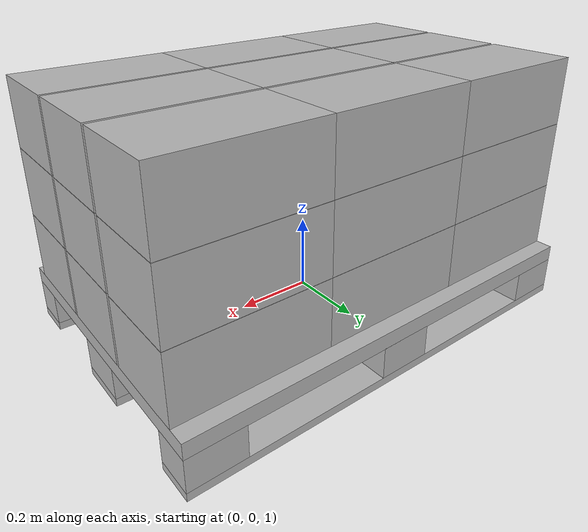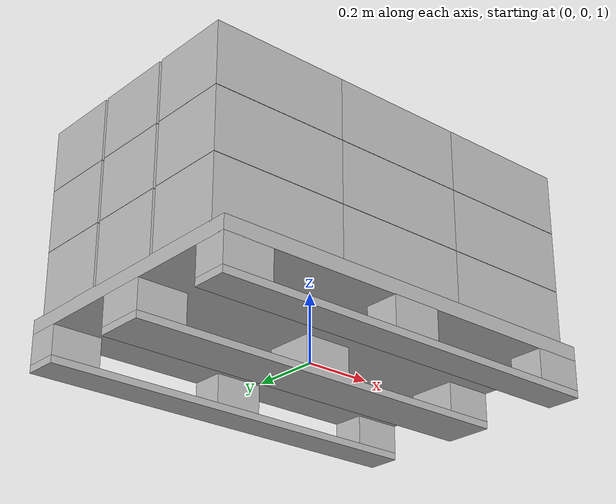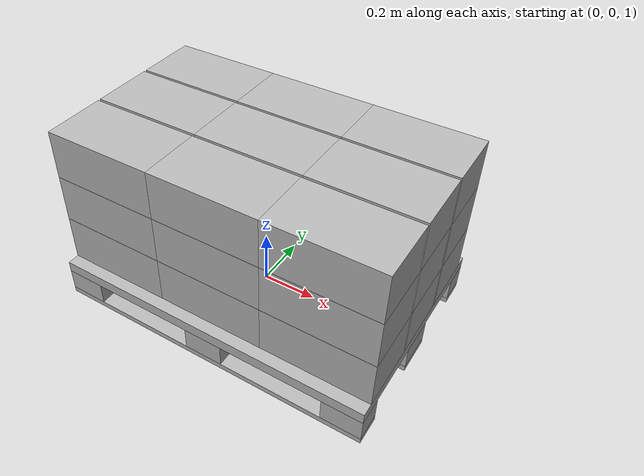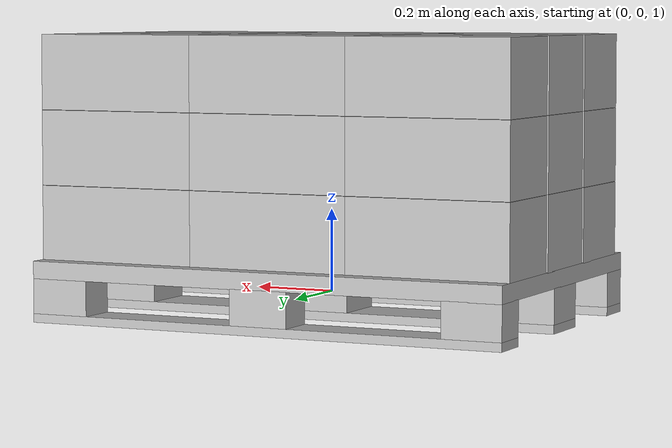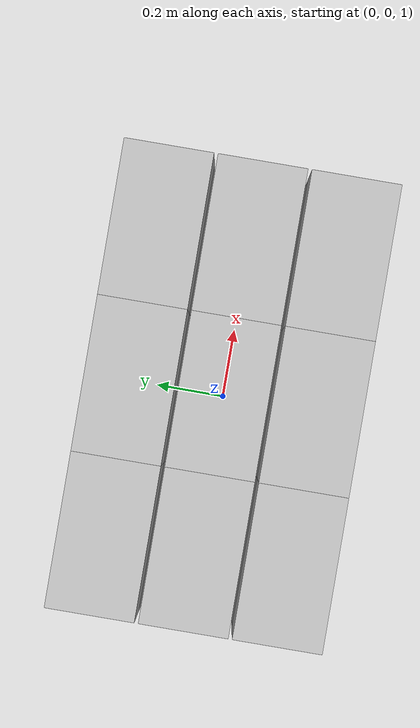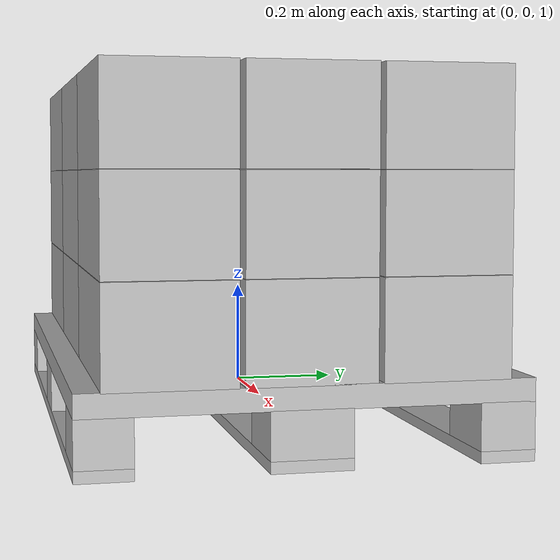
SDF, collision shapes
<?xml version="1.0" ?>
<sdf version="1.5">
  <model name="pallet full">
    <pose>0 0 1  0 0 0</pose>
    <static>false</static>
    <self_collide>true</self_collide>
    <allow_auto_disable>true</allow_auto_disable>

    <!-- Pallet dimensions: 120 x 80 x 14.7 cm-->
    <include>
      <uri>model://../model_source/models/europallet</uri>
      <name>pallet</name>
      <pose>0 0 0  0 0 0</pose>
    </include>

	<!-- Small Box dimensions: 40 x 24 x 18 cm-->

	<!-- First level of boxes -->
    <include>
      <uri>model://../model_source/models/small_box</uri>
      <name>small_box_1_lvl_1</name>
      <pose>0.40 -0.24 0.172  0 0 0</pose>
      <static>true</static>
    </include>

	<include>
      <uri>model://../model_source/models/small_box</uri>
      <name>small_box_2_lvl_1</name>
      <pose>0.40 0 0.172  0 0 0</pose>
      <static>true</static>
    </include>

	<include>
      <uri>model://../model_source/models/small_box</uri>
      <name>small_box_3_lvl_1</name>
      <pose>0.40 0.24 0.172  0 0 0</pose>
    </include>

	<include>
      <uri>model://../model_source/models/small_box</uri>
      <name>small_box_4_lvl_1</name>
      <pose>0 -0.24 0.172  0 0 0</pose>
    </include>

	<include>
      <uri>model://../model_source/models/small_box</uri>
      <name>small_box_5_lvl_1</name>
      <pose>0 0 0.172  0 0 0</pose>
    </include>

	<include>
      <uri>model://../model_source/models/small_box</uri>
      <name>small_box_6_lvl_1</name>
      <pose>0 0.24 0.172  0 0 0</pose>
    </include>

	<include>
      <uri>model://../model_source/models/small_box</uri>
      <name>small_box_7_lvl_1</name>
      <pose>-0.40 -0.24 0.172  0 0 0</pose>
    </include>

	<include>
      <uri>model://../model_source/models/small_box</uri>
      <name>small_box_8_lvl_1</name>
      <pose>-0.40 0 0.172  0 0 0</pose>
    </include>

	<include>
      <uri>model://../model_source/models/small_box</uri>
      <name>small_box_9_lvl_1</name>
      <pose>-0.40 0.24 0.172  0 0 0</pose>
    </include>

	<!-- Second level of boxes -->
    <include>
      <uri>model://../model_source/models/small_box</uri>
      <name>small_box_1_lvl_2</name>
      <pose>0.40 -0.24 0.353  0 0 0</pose>
    </include>

	<include>
      <uri>model://../model_source/models/small_box</uri>
      <name>small_box_2_lvl_2</name>
      <pose>0.40 0 0.353  0 0 0</pose>
    </include>

	<include>
      <uri>model://../model_source/models/small_box</uri>
      <name>small_box_3_lvl_2</name>
      <pose>0.40 0.24 0.353  0 0 0</pose>
    </include>

	<include>
      <uri>model://../model_source/models/small_box</uri>
      <name>small_box_4_lvl_2</name>
      <pose>0 -0.24 0.353  0 0 0</pose>
    </include>

	<include>
      <uri>model://../model_source/models/small_box</uri>
      <name>small_box_5_lvl_2</name>
      <pose>0 0 0.353  0 0 0</pose>
    </include>

	<include>
      <uri>model://../model_source/models/small_box</uri>
      <name>small_box_6_lvl_2</name>
      <pose>0 0.24 0.353  0 0 0</pose>
    </include>

	<include>
      <uri>model://../model_source/models/small_box</uri>
      <name>small_box_7_lvl_2</name>
      <pose>-0.40 -0.24 0.353  0 0 0</pose>
    </include>

	<include>
      <uri>model://../model_source/models/small_box</uri>
      <name>small_box_8_lvl_2</name>
      <pose>-0.40 0 0.353  0 0 0</pose>
    </include>

	<include>
      <uri>model://../model_source/models/small_box</uri>
      <name>small_box_9_lvl_2</name>
      <pose>-0.40 0.24 0.353  0 0 0</pose>
    </include>

	<!-- Third level of boxes -->
    <include>
      <uri>model://../model_source/models/small_box</uri>
      <name>small_box_1_lvl_3</name>
      <pose>0.40 -0.24 0.534  0 0 0</pose>
    </include>

	<include>
      <uri>model://../model_source/models/small_box</uri>
      <name>small_box_2_lvl_3</name>
      <pose>0.40 0 0.534  0 0 0</pose>
    </include>

	<include>
      <uri>model://../model_source/models/small_box</uri>
      <name>small_box_3_lvl_3</name>
      <pose>0.40 0.24 0.534  0 0 0</pose>
    </include>

	<include>
      <uri>model://../model_source/models/small_box</uri>
      <name>small_box_4_lvl_3</name>
      <pose>0 -0.24 0.534  0 0 0</pose>
    </include>

	<include>
      <uri>model://../model_source/models/small_box</uri>
      <name>small_box_5_lvl_3</name>
      <pose>0 0 0.534  0 0 0</pose>
    </include>

	<include>
      <uri>model://../model_source/models/small_box</uri>
      <name>small_box_6_lvl_3</name>
      <pose>0 0.24 0.534  0 0 0</pose>
    </include>

	<include>
      <uri>model://../model_source/models/small_box</uri>
      <name>small_box_7_lvl_3</name>
      <pose>-0.40 -0.24 0.534  0 0 0</pose>
    </include>

	<include>
      <uri>model://../model_source/models/small_box</uri>
      <name>small_box_8_lvl_3</name>
      <pose>-0.40 0 0.534  0 0 0</pose>
    </include>

	<include>
      <uri>model://../model_source/models/small_box</uri>
      <name>small_box_9_lvl_3</name>
      <pose>-0.40 0.24 0.534  0 0 0</pose>
      <static>true</static>
    </include>

  </model>
</sdf>

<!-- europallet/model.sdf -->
<sdf version="1.5">
  <model name="EuroPallet">
    <!-- Rises the pallet above the ground -->
    <pose>0 0 0.0635  0 0 0</pose>

    <static>false</static>
    <link name="link">
      <inertial>
        <mass>25.0</mass>
        <inertia>
          <ixx>1</ixx>
          <ixy>0</ixy>
          <ixz>0</ixz>
          <iyy>1</iyy>
          <iyz>0</iyz>
          <izz>1</izz>
        </inertia>
      </inertial>

      <collision name="top">
	    <pose>0 0 0.0625  0 0 0</pose>
        <geometry>
		  <box>
		    <size>1.20 0.80 0.042</size>
	      </box>
        </geometry>

      </collision>

      <collision name="colum_1">
	    <pose>0.5275 -0.35 0  0 0 0</pose>
        <geometry>
		  <box>
		    <size>.145 0.10 0.085</size>
	      </box>
        </geometry>
      </collision>

      <collision name="colum_2">
	    <pose>0.5275 0 0  0 0 0</pose>
        <geometry>
		  <box>
		    <size>.145 0.145 0.085</size>
	      </box>
        </geometry>
      </collision>

      <collision name="colum_3">
	    <pose>0.5275 0.35 0  0 0 0</pose>
        <geometry>
		  <box>
		    <size>.145 0.10 0.085</size>
	      </box>
        </geometry>
      </collision>

      <collision name="colum_4">
	    <pose>0 -0.35 0  0 0 0</pose>
        <geometry>
		  <box>
		    <size>.145 0.10 0.085</size>
	      </box>
        </geometry>
      </collision>

      <collision name="colum_5">
	    <pose>0 0 0  0 0 0</pose>
        <geometry>
		  <box>
		    <size>.145 0.145 0.085</size>
	      </box>
        </geometry>
      </collision>

      <collision name="colum_6">
	    <pose>0 0.35 0  0 0 0</pose>
        <geometry>
		  <box>
		    <size>.145 0.10 0.085</size>
	      </box>
        </geometry>
      </collision>

      <collision name="colum_7">
	    <pose>-0.5275 -0.35 0  0 0 0</pose>
        <geometry>
		  <box>
		    <size>.145 0.10 0.085</size>
	      </box>
        </geometry>
      </collision>

      <collision name="colum_8">
	    <pose>-0.5275 0 0  0 0 0</pose>
        <geometry>
		  <box>
		    <size>.145 0.145 0.085</size>
	      </box>
        </geometry>
      </collision>

      <collision name="colum_9">
	    <pose>-0.5275 0.35 0  0 0 0</pose>
        <geometry>
		  <box>
		    <size>.145 0.10 0.085</size>
	      </box>
        </geometry>
      </collision>

      <collision name="bottom_1">
	    <pose>0 -0.35 -0.053  0 0 0</pose>
        <geometry>
		  <box>
		    <size>1.20 0.10 0.021</size>
	      </box>
        </geometry>
      </collision>

      <collision name="bottom_2">
	    <pose>0 0 -0.053  0 0 0</pose>
        <geometry>
		  <box>
		    <size>1.20 0.145 0.021</size>
	      </box>
        </geometry>
      </collision>

      <collision name="bottom_3">
	    <pose>0 0.35 -0.053  0 0 0</pose>
        <geometry>
		  <box>
		    <size>1.20 0.10 0.021</size>
	      </box>
        </geometry>
      </collision>

      <visual name="visual">
        <geometry>
          <mesh>
            <uri>model://../model_source/models/europallet/meshes/europallet.dae</uri>
          </mesh>
        </geometry>
      </visual>
    </link>
  </model>
</sdf>

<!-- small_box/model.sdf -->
<sdf version="1.5">
  <model name="small box">
    <pose>0 0 0.09  0 0 0</pose>
    <static>false</static>
    <link name="link">
      <inertial>
        <mass>2.0</mass>
        <inertia>
          <ixx>0.0008611666666666669</ixx>
          <ixy>0</ixy>
          <ixz>0</ixz>
          <iyy>0.0008611666666666669</iyy>
          <iyz>0</iyz>
          <izz>0.0008611666666666669</izz>
        </inertia>
      </inertial>

      <collision name="collision">
        <geometry>
          <box>
              <size>0.40 0.23 0.18</size>
          </box>
        </geometry>
	<surface>
          <contact>
            <ode>
              <max_vel>0.1</max_vel>
              <min_depth>0.001</min_depth>
            </ode>
          </contact>
        </surface>
      </collision>
      <visual name="visual">
        <geometry>
          <mesh>
            <uri>model://../model_source/models/small_box/meshes/small_box.dae</uri>
          </mesh>
	</geometry>
      </visual>
    </link>
  </model>
</sdf>
